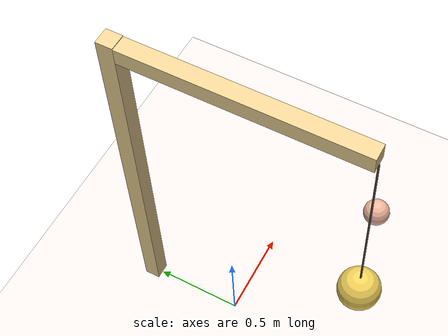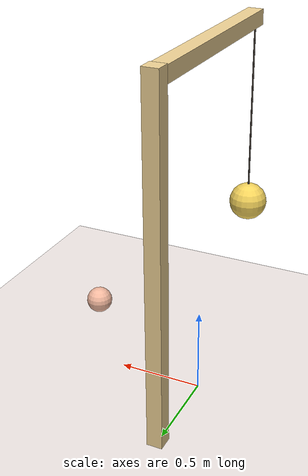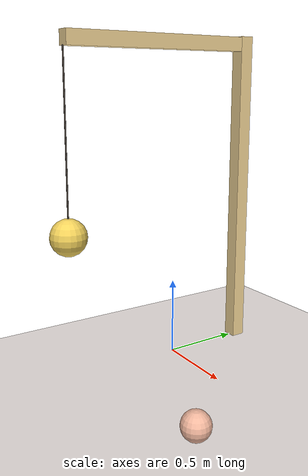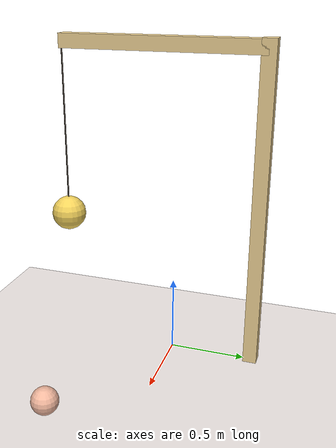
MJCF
<mujoco model="pendulum_scene">
  <compiler angle="radian" coordinate="local" autolimits="true"/>
  <option timestep="0.002" gravity="0 0 -9.81" integrator="implicitfast"/>

  <visual>
    <headlight diffuse="0 0 0" ambient="0.50 0.48 0.55" specular="0 0 0"/>
    <!-- haze = horizon band color; match it to the floor so the seam disappears -->
    <rgba haze="0.94 0.91 0.90 1"/>
    <global azimuth="120" elevation="-15" offwidth="1920" offheight="1080" fovy="40"/>
    <quality shadowsize="8192" offsamples="8"/>
    <map shadowclip="5" shadowscale="0.7"/>
  </visual>

  <asset>
    <!-- Skybox: FLAT (uniform color), avoids the wavy gradient band at the horizon.
         Clean horizon line = sky (purple) meets floor (cream). -->
    <texture type="skybox" builtin="flat"
             rgb1="0.74 0.68 0.86" rgb2="0.74 0.68 0.86"
             width="512" height="512"
             mark="none" markrgb="0 0 0"/>

    <!-- Floor: flat soft cream, no texture (cleaner than checker) -->
    <material name="floor_mat" rgba="0.94 0.91 0.90 1"
              reflectance="0.0" specular="0.0" shininess="0.0"/>

    <material name="wood" rgba="0.93 0.82 0.58 1" specular="0.1" shininess="0.1"/>
    <material name="bob_yellow" rgba="0.96 0.83 0.36 1" specular="0.35" shininess="0.4"/>
    <material name="ball_peach" rgba="0.95 0.72 0.62 1" specular="0.3" shininess="0.35"/>
    <material name="string_mat" rgba="0.28 0.25 0.22 1" specular="0.0" shininess="0.0"/>
  </asset>

  <worldbody>
    <!-- Key light: from upper-left-front -->
    <light pos="0 0 10" dir="-0.35 0.55 -1" directional="true" castshadow="true"
           diffuse="0.85 0.82 0.78" specular="0.15 0.15 0.15"/>
    <!-- Soft fill from opposite side, no shadow -->
    <light pos="0 0 6" dir="0.45 -0.3 -1" directional="true" castshadow="false"
           diffuse="0.30 0.30 0.36" specular="0 0 0"/>

    <!-- Big floor (horizon will be off-frame) -->
    <geom name="floor" type="plane" size="40 40 0.1" material="floor_mat"/>

    <!-- L-shaped stand (matches the paper):
         one vertical post at the back, one horizontal arm extending forward -->
    <!-- Vertical post -->
    <geom type="box" size="0.045 0.045 1.05"
          pos="0 0.55 1.05" material="wood"/>
    <!-- Horizontal arm extending toward camera, from post top to hinge -->
    <geom type="box" size="0.045 0.65 0.045"
          pos="0 -0.10 2.05" material="wood"/>

    <!-- Pendulum hung from the END of the horizontal arm (at y=-0.75) -->
    <body name="pendulum" pos="0 -0.75 2.005">
      <joint name="hinge" type="hinge" axis="0 1 0" pos="0 0 0" damping="0.015"/>
      <geom name="string" type="capsule"
            fromto="0 0 0  0 0 -1.1" size="0.005"
            material="string_mat" contype="0" conaffinity="0"/>
      <geom name="bob" type="sphere" pos="0 0 -1.1" size="0.115"
            material="bob_yellow" contype="0" conaffinity="0"/>
    </body>

    <!-- Decorative small ball on the ground -->
    <geom type="sphere" pos="0.95 -0.5 0.085" size="0.085" material="ball_peach"/>

    <!-- Camera: 3/4 view from front-right -->
    <camera name="cam" pos="3.0 -3.3 1.9"
            xyaxes="0.74 0.67 0   -0.20 0.22 0.95"/>
  </worldbody>
</mujoco>
